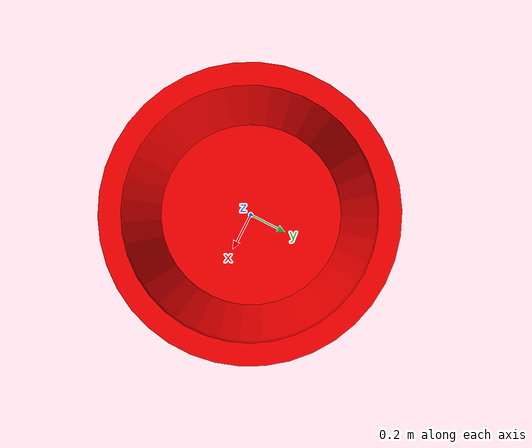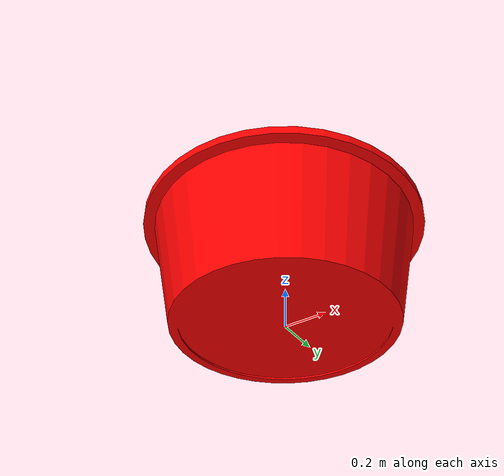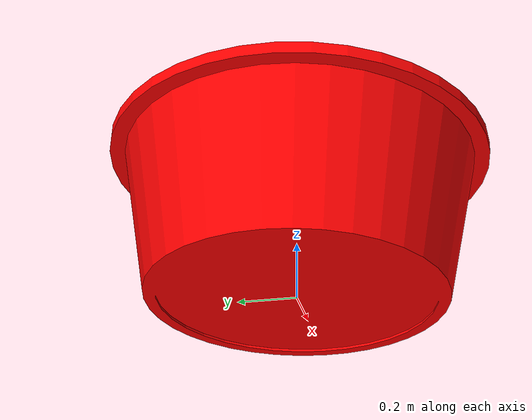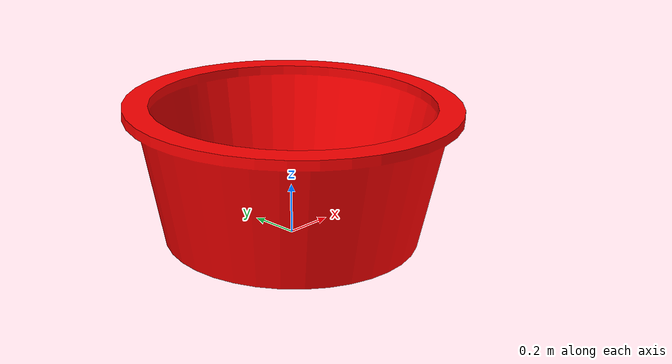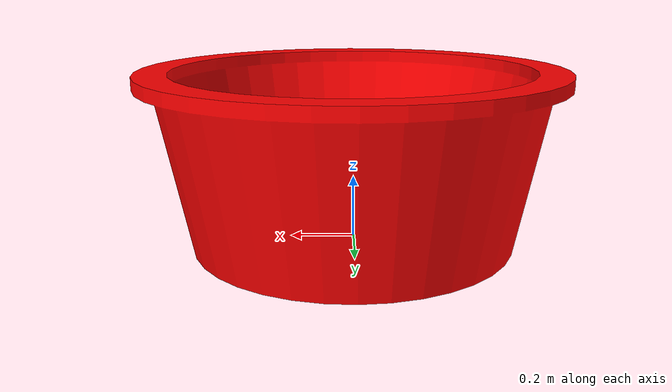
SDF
<?xml version='1.0'?>
<sdf version='1.7'>
  <model name='bowl_red'>
    <link name='bowl'>
      <inertial>
        <pose>0 0 0 0 0 0</pose>
        <mass>500</mass>
        <inertia>
          <ixx>350.977</ixx>
          <ixy>0.710796</ixy>
          <ixz>2.07091</ixz>
          <iyy>10147.4</iyy>
          <iyz>-1.39101</iyz>
          <izz>10345.1</izz>
        </inertia>
      </inertial>
      <self_collide>0</self_collide>
      <enable_wind>0</enable_wind>
      <kinematic>0</kinematic>
      <pose>0 0 0 1.59 0 0</pose>
      <visual name='bowl_red'>
        <pose>0 0 0 0 0 0</pose>
        <geometry>
          <mesh>
            <scale>1 1 1</scale>
            <uri>meshes/Bucket_1_Link.STL</uri>
          </mesh>
        </geometry>
        <material>
          <ambient>1.0 0.0 0.0 1</ambient>
            <diffuse>1.0 0.0 0.0 1</diffuse>
            <specular>1.0 0.0 0.0 1</specular>
        </material>
        <transparency>0</transparency>
        <cast_shadows>1</cast_shadows>
      </visual>
      <collision name='base_green_fixed_joint_lump__Bucket_1_Link_collision_1'>
        <laser_retro>0</laser_retro>
        <max_contacts>10</max_contacts>
        <pose>0 0 0 0 0 0</pose>
        <geometry>
          <mesh>
            <uri>meshes/Bucket_1_Link.STL</uri>
            <scale>1 1 1</scale>
          </mesh>
        </geometry>
        <surface>
          <friction>
            <ode>
              <mu>1</mu>
              <mu2>1</mu2>
              <fdir1>0 0 0</fdir1>
              <slip1>0</slip1>
              <slip2>0</slip2>
            </ode>
            <torsional>
              <coefficient>1</coefficient>
              <patch_radius>0</patch_radius>
              <surface_radius>0</surface_radius>
              <use_patch_radius>1</use_patch_radius>
              <ode>
                <slip>0</slip>
              </ode>
            </torsional>
          </friction>
          <bounce>
            <restitution_coefficient>0</restitution_coefficient>
            <threshold>1e+06</threshold>
          </bounce>
          <contact>
            <collide_without_contact>0</collide_without_contact>
            <collide_without_contact_bitmask>1</collide_without_contact_bitmask>
            <collide_bitmask>1</collide_bitmask>
            <ode>
              <soft_cfm>0</soft_cfm>
              <soft_erp>0.2</soft_erp>
              <kp>1e+13</kp>
              <kd>1</kd>
              <max_vel>0.01</max_vel>
              <min_depth>0</min_depth>
            </ode>
            <bullet>
              <split_impulse>1</split_impulse>
              <split_impulse_penetration_threshold>-0.01</split_impulse_penetration_threshold>
              <soft_cfm>0</soft_cfm>
              <soft_erp>0.2</soft_erp>
              <kp>1e+13</kp>
              <kd>1</kd>
            </bullet>
          </contact>
        </surface>
      </collision>
    </link>
    <static>1</static>
    <allow_auto_disable>1</allow_auto_disable>
  </model>
</sdf>
